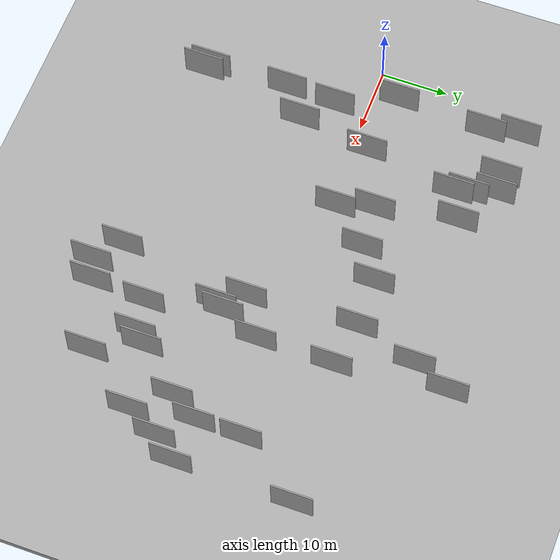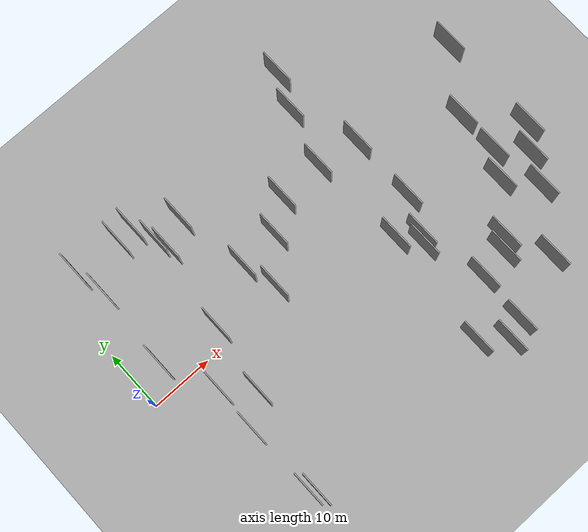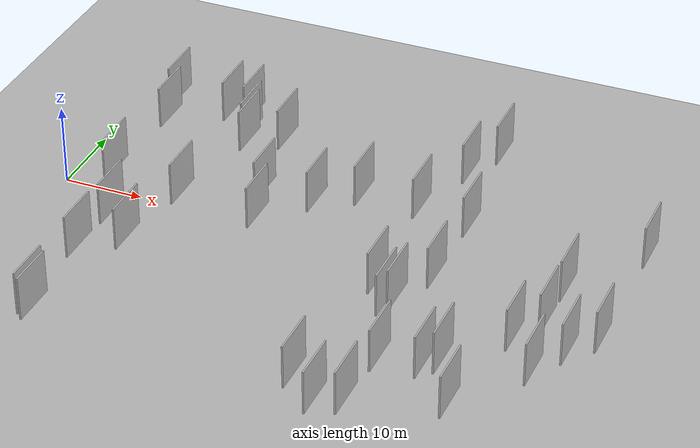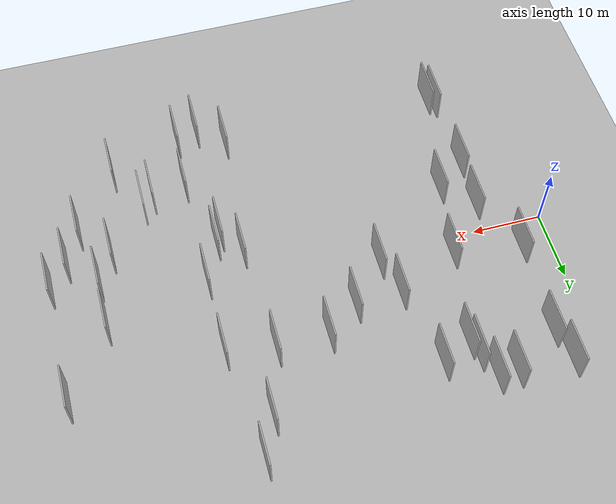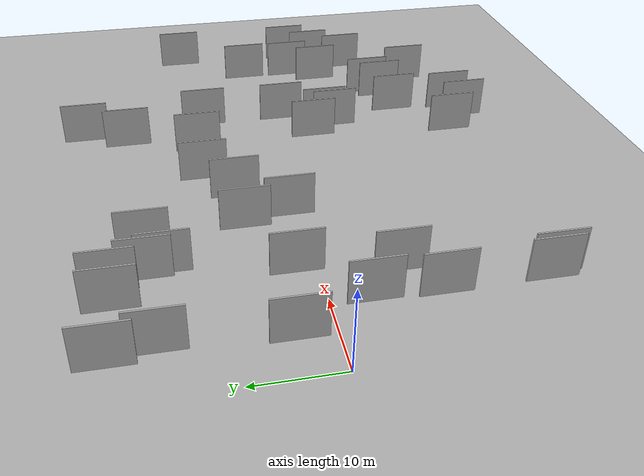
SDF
<?xml version="1.0" encoding="utf-8"?>

<sdf version="1.6">

   <world name="default">

      <gui fullscreen="0">

         <camera name="user_camera">

            <pose>-15 0 4.57585 0 0 0</pose>

            <view_controller>orbit</view_controller>

         </camera>

      </gui>

      <scene>

         <sky>

           <clouds>

             <speed>12</speed>

           </clouds>

         </sky>

         <ambient>0.4 0.4 0.4 1</ambient>

         <background>0.7 0.7 0.7 1</background>

         <shadows>1</shadows>

      </scene>

      <gravity>0 0 -9.8066</gravity>

      <magnetic_field>6e-06 2.3e-05 -4.2e-05</magnetic_field>

      <physics default="0" name="default_physics" type="ode">

         <ode>

            <solver>

               <type>quick</type>

               <iters>10</iters>

               <sor>1.0</sor>

               <use_dynamic_moi_rescaling>0</use_dynamic_moi_rescaling>

            </solver>

            <constraints>

               <cfm>0</cfm>

               <erp>0.2</erp>

               <contact_max_correcting_vel>100</contact_max_correcting_vel>

               <contact_surface_layer>0.001</contact_surface_layer>

            </constraints>

         </ode>

         <max_step_size>0.004</max_step_size>

         <real_time_factor>1</real_time_factor>

         <real_time_update_rate>250</real_time_update_rate>

      </physics>

      <light name="sun" type="directional">

         <cast_shadows>1</cast_shadows>

         <pose>0 0 10 0 0 0</pose>

         <diffuse>0.8 0.8 0.8 1</diffuse>

         <specular>0.2 0.2 0.2 1</specular>

         <attenuation>

            <range>1000</range>

            <constant>0.9</constant>

            <linear>0.01</linear>

            <quadratic>0.001</quadratic>

         </attenuation>

         <direction>-0.5 0.1 -0.9</direction>

      </light>

      <include>

         <name>ground_plane_1</name>

         <uri>model://HANNAS_ground_plane</uri>

         <pose>0 0 0  0 0 0</pose>

      </include>

      <include>

         <name>ground_plane_2</name>

         <uri>model://HANNAS_ground_plane</uri>

         <pose>100 0 0  0 0 0</pose>

      </include>

      <model name="HANNAS_wall_1">

         <static>1</static>

         <pose frame="">48.4685 -18.3845 0.0 0.000000 0.000000 1.570796</pose>

         <link name="link">

            <pose frame="">0 0 3.00 0 0 0</pose>

            <collision name="collision">

               <geometry>

                  <box>

                     <size>6.00 0.2 6.00</size>

                  </box>

               </geometry>

               <max_contacts>10</max_contacts>

               <surface>

                  <contact>

                     <ode/>

                  </contact>

                  <bounce/>

                  <friction>

                     <torsional>

                        <ode/>

                     </torsional>

                     <ode/>

                  </friction>

               </surface>

            </collision>

            <visual name="visual">

               <cast_shadows>0</cast_shadows>

               <geometry>

                  <box>

                     <size>6.00 0.2 6.00</size>

                  </box>

               </geometry>

               <material>

                  <script>

                     <uri>model://HANNAS_wall/materials/scripts</uri>

                     <uri>model://HANNAS_wall/materials/textures</uri>

                     <name>vrc/HANNAS_wall</name>

                  </script>

               </material>

            </visual>

            <self_collide>0</self_collide>

            <enable_wind>0</enable_wind>

            <kinematic>0</kinematic>

         </link>

      </model>

      <model name="HANNAS_wall_2">

         <static>1</static>

         <pose frame="">14.8363 22.1679 0.0 0.000000 0.000000 1.570796</pose>

         <link name="link">

            <pose frame="">0 0 3.00 0 0 0</pose>

            <collision name="collision">

               <geometry>

                  <box>

                     <size>6.00 0.2 6.00</size>

                  </box>

               </geometry>

               <max_contacts>10</max_contacts>

               <surface>

                  <contact>

                     <ode/>

                  </contact>

                  <bounce/>

                  <friction>

                     <torsional>

                        <ode/>

                     </torsional>

                     <ode/>

                  </friction>

               </surface>

            </collision>

            <visual name="visual">

               <cast_shadows>0</cast_shadows>

               <geometry>

                  <box>

                     <size>6.00 0.2 6.00</size>

                  </box>

               </geometry>

               <material>

                  <script>

                     <uri>model://HANNAS_wall/materials/scripts</uri>

                     <uri>model://HANNAS_wall/materials/textures</uri>

                     <name>vrc/HANNAS_wall</name>

                  </script>

               </material>

            </visual>

            <self_collide>0</self_collide>

            <enable_wind>0</enable_wind>

            <kinematic>0</kinematic>

         </link>

      </model>

      <model name="HANNAS_wall_3">

         <static>1</static>

         <pose frame="">8.4255 -23.9768 0.0 0.000000 0.000000 1.570796</pose>

         <link name="link">

            <pose frame="">0 0 3.00 0 0 0</pose>

            <collision name="collision">

               <geometry>

                  <box>

                     <size>6.00 0.2 6.00</size>

                  </box>

               </geometry>

               <max_contacts>10</max_contacts>

               <surface>

                  <contact>

                     <ode/>

                  </contact>

                  <bounce/>

                  <friction>

                     <torsional>

                        <ode/>

                     </torsional>

                     <ode/>

                  </friction>

               </surface>

            </collision>

            <visual name="visual">

               <cast_shadows>0</cast_shadows>

               <geometry>

                  <box>

                     <size>6.00 0.2 6.00</size>

                  </box>

               </geometry>

               <material>

                  <script>

                     <uri>model://HANNAS_wall/materials/scripts</uri>

                     <uri>model://HANNAS_wall/materials/textures</uri>

                     <name>vrc/HANNAS_wall</name>

                  </script>

               </material>

            </visual>

            <self_collide>0</self_collide>

            <enable_wind>0</enable_wind>

            <kinematic>0</kinematic>

         </link>

      </model>

      <model name="HANNAS_wall_4">

         <static>1</static>

         <pose frame="">4.5702 4.0605 0.0 0.000000 0.000000 1.570796</pose>

         <link name="link">

            <pose frame="">0 0 3.00 0 0 0</pose>

            <collision name="collision">

               <geometry>

                  <box>

                     <size>6.00 0.2 6.00</size>

                  </box>

               </geometry>

               <max_contacts>10</max_contacts>

               <surface>

                  <contact>

                     <ode/>

                  </contact>

                  <bounce/>

                  <friction>

                     <torsional>

                        <ode/>

                     </torsional>

                     <ode/>

                  </friction>

               </surface>

            </collision>

            <visual name="visual">

               <cast_shadows>0</cast_shadows>

               <geometry>

                  <box>

                     <size>6.00 0.2 6.00</size>

                  </box>

               </geometry>

               <material>

                  <script>

                     <uri>model://HANNAS_wall/materials/scripts</uri>

                     <uri>model://HANNAS_wall/materials/textures</uri>

                     <name>vrc/HANNAS_wall</name>

                  </script>

               </material>

            </visual>

            <self_collide>0</self_collide>

            <enable_wind>0</enable_wind>

            <kinematic>0</kinematic>

         </link>

      </model>

      <model name="HANNAS_wall_5">

         <static>1</static>

         <pose frame="">24.8012 1.3951 0.0 0.000000 0.000000 1.570796</pose>

         <link name="link">

            <pose frame="">0 0 3.00 0 0 0</pose>

            <collision name="collision">

               <geometry>

                  <box>

                     <size>6.00 0.2 6.00</size>

                  </box>

               </geometry>

               <max_contacts>10</max_contacts>

               <surface>

                  <contact>

                     <ode/>

                  </contact>

                  <bounce/>

                  <friction>

                     <torsional>

                        <ode/>

                     </torsional>

                     <ode/>

                  </friction>

               </surface>

            </collision>

            <visual name="visual">

               <cast_shadows>0</cast_shadows>

               <geometry>

                  <box>

                     <size>6.00 0.2 6.00</size>

                  </box>

               </geometry>

               <material>

                  <script>

                     <uri>model://HANNAS_wall/materials/scripts</uri>

                     <uri>model://HANNAS_wall/materials/textures</uri>

                     <name>vrc/HANNAS_wall</name>

                  </script>

               </material>

            </visual>

            <self_collide>0</self_collide>

            <enable_wind>0</enable_wind>

            <kinematic>0</kinematic>

         </link>

      </model>

      <model name="HANNAS_wall_6">

         <static>1</static>

         <pose frame="">29.9278 7.2369 0.0 0.000000 0.000000 1.570796</pose>

         <link name="link">

            <pose frame="">0 0 3.00 0 0 0</pose>

            <collision name="collision">

               <geometry>

                  <box>

                     <size>6.00 0.2 6.00</size>

                  </box>

               </geometry>

               <max_contacts>10</max_contacts>

               <surface>

                  <contact>

                     <ode/>

                  </contact>

                  <bounce/>

                  <friction>

                     <torsional>

                        <ode/>

                     </torsional>

                     <ode/>

                  </friction>

               </surface>

            </collision>

            <visual name="visual">

               <cast_shadows>0</cast_shadows>

               <geometry>

                  <box>

                     <size>6.00 0.2 6.00</size>

                  </box>

               </geometry>

               <material>

                  <script>

                     <uri>model://HANNAS_wall/materials/scripts</uri>

                     <uri>model://HANNAS_wall/materials/textures</uri>

                     <name>vrc/HANNAS_wall</name>

                  </script>

               </material>

            </visual>

            <self_collide>0</self_collide>

            <enable_wind>0</enable_wind>

            <kinematic>0</kinematic>

         </link>

      </model>

      <model name="HANNAS_wall_7">

         <static>1</static>

         <pose frame="">45.3188 -8.8101 0.0 0.000000 0.000000 1.570796</pose>

         <link name="link">

            <pose frame="">0 0 3.00 0 0 0</pose>

            <collision name="collision">

               <geometry>

                  <box>

                     <size>6.00 0.2 6.00</size>

                  </box>

               </geometry>

               <max_contacts>10</max_contacts>

               <surface>

                  <contact>

                     <ode/>

                  </contact>

                  <bounce/>

                  <friction>

                     <torsional>

                        <ode/>

                     </torsional>

                     <ode/>

                  </friction>

               </surface>

            </collision>

            <visual name="visual">

               <cast_shadows>0</cast_shadows>

               <geometry>

                  <box>

                     <size>6.00 0.2 6.00</size>

                  </box>

               </geometry>

               <material>

                  <script>

                     <uri>model://HANNAS_wall/materials/scripts</uri>

                     <uri>model://HANNAS_wall/materials/textures</uri>

                     <name>vrc/HANNAS_wall</name>

                  </script>

               </material>

            </visual>

            <self_collide>0</self_collide>

            <enable_wind>0</enable_wind>

            <kinematic>0</kinematic>

         </link>

      </model>

      <model name="HANNAS_wall_8">

         <static>1</static>

         <pose frame="">67.0962 -9.3327 0.0 0.000000 0.000000 1.570796</pose>

         <link name="link">

            <pose frame="">0 0 3.00 0 0 0</pose>

            <collision name="collision">

               <geometry>

                  <box>

                     <size>6.00 0.2 6.00</size>

                  </box>

               </geometry>

               <max_contacts>10</max_contacts>

               <surface>

                  <contact>

                     <ode/>

                  </contact>

                  <bounce/>

                  <friction>

                     <torsional>

                        <ode/>

                     </torsional>

                     <ode/>

                  </friction>

               </surface>

            </collision>

            <visual name="visual">

               <cast_shadows>0</cast_shadows>

               <geometry>

                  <box>

                     <size>6.00 0.2 6.00</size>

                  </box>

               </geometry>

               <material>

                  <script>

                     <uri>model://HANNAS_wall/materials/scripts</uri>

                     <uri>model://HANNAS_wall/materials/textures</uri>

                     <name>vrc/HANNAS_wall</name>

                  </script>

               </material>

            </visual>

            <self_collide>0</self_collide>

            <enable_wind>0</enable_wind>

            <kinematic>0</kinematic>

         </link>

      </model>

      <model name="HANNAS_wall_9">

         <static>1</static>

         <pose frame="">47.9598 -26.5343 0.0 0.000000 0.000000 1.570796</pose>

         <link name="link">

            <pose frame="">0 0 3.00 0 0 0</pose>

            <collision name="collision">

               <geometry>

                  <box>

                     <size>6.00 0.2 6.00</size>

                  </box>

               </geometry>

               <max_contacts>10</max_contacts>

               <surface>

                  <contact>

                     <ode/>

                  </contact>

                  <bounce/>

                  <friction>

                     <torsional>

                        <ode/>

                     </torsional>

                     <ode/>

                  </friction>

               </surface>

            </collision>

            <visual name="visual">

               <cast_shadows>0</cast_shadows>

               <geometry>

                  <box>

                     <size>6.00 0.2 6.00</size>

                  </box>

               </geometry>

               <material>

                  <script>

                     <uri>model://HANNAS_wall/materials/scripts</uri>

                     <uri>model://HANNAS_wall/materials/textures</uri>

                     <name>vrc/HANNAS_wall</name>

                  </script>

               </material>

            </visual>

            <self_collide>0</self_collide>

            <enable_wind>0</enable_wind>

            <kinematic>0</kinematic>

         </link>

      </model>

      <model name="HANNAS_wall_10">

         <static>1</static>

         <pose frame="">60.7388 -9.2303 0.0 0.000000 0.000000 1.570796</pose>

         <link name="link">

            <pose frame="">0 0 3.00 0 0 0</pose>

            <collision name="collision">

               <geometry>

                  <box>

                     <size>6.00 0.2 6.00</size>

                  </box>

               </geometry>

               <max_contacts>10</max_contacts>

               <surface>

                  <contact>

                     <ode/>

                  </contact>

                  <bounce/>

                  <friction>

                     <torsional>

                        <ode/>

                     </torsional>

                     <ode/>

                  </friction>

               </surface>

            </collision>

            <visual name="visual">

               <cast_shadows>0</cast_shadows>

               <geometry>

                  <box>

                     <size>6.00 0.2 6.00</size>

                  </box>

               </geometry>

               <material>

                  <script>

                     <uri>model://HANNAS_wall/materials/scripts</uri>

                     <uri>model://HANNAS_wall/materials/textures</uri>

                     <name>vrc/HANNAS_wall</name>

                  </script>

               </material>

            </visual>

            <self_collide>0</self_collide>

            <enable_wind>0</enable_wind>

            <kinematic>0</kinematic>

         </link>

      </model>

      <model name="HANNAS_wall_11">

         <static>1</static>

         <pose frame="">64.6446 -14.2195 0.0 0.000000 0.000000 1.570796</pose>

         <link name="link">

            <pose frame="">0 0 3.00 0 0 0</pose>

            <collision name="collision">

               <geometry>

                  <box>

                     <size>6.00 0.2 6.00</size>

                  </box>

               </geometry>

               <max_contacts>10</max_contacts>

               <surface>

                  <contact>

                     <ode/>

                  </contact>

                  <bounce/>

                  <friction>

                     <torsional>

                        <ode/>

                     </torsional>

                     <ode/>

                  </friction>

               </surface>

            </collision>

            <visual name="visual">

               <cast_shadows>0</cast_shadows>

               <geometry>

                  <box>

                     <size>6.00 0.2 6.00</size>

                  </box>

               </geometry>

               <material>

                  <script>

                     <uri>model://HANNAS_wall/materials/scripts</uri>

                     <uri>model://HANNAS_wall/materials/textures</uri>

                     <name>vrc/HANNAS_wall</name>

                  </script>

               </material>

            </visual>

            <self_collide>0</self_collide>

            <enable_wind>0</enable_wind>

            <kinematic>0</kinematic>

         </link>

      </model>

      <model name="HANNAS_wall_12">

         <static>1</static>

         <pose frame="">8.2031 -12.1271 0.0 0.000000 0.000000 1.570796</pose>

         <link name="link">

            <pose frame="">0 0 3.00 0 0 0</pose>

            <collision name="collision">

               <geometry>

                  <box>

                     <size>6.00 0.2 6.00</size>

                  </box>

               </geometry>

               <max_contacts>10</max_contacts>

               <surface>

                  <contact>

                     <ode/>

                  </contact>

                  <bounce/>

                  <friction>

                     <torsional>

                        <ode/>

                     </torsional>

                     <ode/>

                  </friction>

               </surface>

            </collision>

            <visual name="visual">

               <cast_shadows>0</cast_shadows>

               <geometry>

                  <box>

                     <size>6.00 0.2 6.00</size>

                  </box>

               </geometry>

               <material>

                  <script>

                     <uri>model://HANNAS_wall/materials/scripts</uri>

                     <uri>model://HANNAS_wall/materials/textures</uri>

                     <name>vrc/HANNAS_wall</name>

                  </script>

               </material>

            </visual>

            <self_collide>0</self_collide>

            <enable_wind>0</enable_wind>

            <kinematic>0</kinematic>

         </link>

      </model>

      <model name="HANNAS_wall_13">

         <static>1</static>

         <pose frame="">23.2971 6.8408 0.0 0.000000 0.000000 1.570796</pose>

         <link name="link">

            <pose frame="">0 0 3.00 0 0 0</pose>

            <collision name="collision">

               <geometry>

                  <box>

                     <size>6.00 0.2 6.00</size>

                  </box>

               </geometry>

               <max_contacts>10</max_contacts>

               <surface>

                  <contact>

                     <ode/>

                  </contact>

                  <bounce/>

                  <friction>

                     <torsional>

                        <ode/>

                     </torsional>

                     <ode/>

                  </friction>

               </surface>

            </collision>

            <visual name="visual">

               <cast_shadows>0</cast_shadows>

               <geometry>

                  <box>

                     <size>6.00 0.2 6.00</size>

                  </box>

               </geometry>

               <material>

                  <script>

                     <uri>model://HANNAS_wall/materials/scripts</uri>

                     <uri>model://HANNAS_wall/materials/textures</uri>

                     <name>vrc/HANNAS_wall</name>

                  </script>

               </material>

            </visual>

            <self_collide>0</self_collide>

            <enable_wind>0</enable_wind>

            <kinematic>0</kinematic>

         </link>

      </model>

      <model name="HANNAS_wall_14">

         <static>1</static>

         <pose frame="">41.9795 10.7698 0.0 0.000000 0.000000 1.570796</pose>

         <link name="link">

            <pose frame="">0 0 3.00 0 0 0</pose>

            <collision name="collision">

               <geometry>

                  <box>

                     <size>6.00 0.2 6.00</size>

                  </box>

               </geometry>

               <max_contacts>10</max_contacts>

               <surface>

                  <contact>

                     <ode/>

                  </contact>

                  <bounce/>

                  <friction>

                     <torsional>

                        <ode/>

                     </torsional>

                     <ode/>

                  </friction>

               </surface>

            </collision>

            <visual name="visual">

               <cast_shadows>0</cast_shadows>

               <geometry>

                  <box>

                     <size>6.00 0.2 6.00</size>

                  </box>

               </geometry>

               <material>

                  <script>

                     <uri>model://HANNAS_wall/materials/scripts</uri>

                     <uri>model://HANNAS_wall/materials/textures</uri>

                     <name>vrc/HANNAS_wall</name>

                  </script>

               </material>

            </visual>

            <self_collide>0</self_collide>

            <enable_wind>0</enable_wind>

            <kinematic>0</kinematic>

         </link>

      </model>

      <model name="HANNAS_wall_15">

         <static>1</static>

         <pose frame="">12.6186 -8.5117 0.0 0.000000 0.000000 1.570796</pose>

         <link name="link">

            <pose frame="">0 0 3.00 0 0 0</pose>

            <collision name="collision">

               <geometry>

                  <box>

                     <size>6.00 0.2 6.00</size>

                  </box>

               </geometry>

               <max_contacts>10</max_contacts>

               <surface>

                  <contact>

                     <ode/>

                  </contact>

                  <bounce/>

                  <friction>

                     <torsional>

                        <ode/>

                     </torsional>

                     <ode/>

                  </friction>

               </surface>

            </collision>

            <visual name="visual">

               <cast_shadows>0</cast_shadows>

               <geometry>

                  <box>

                     <size>6.00 0.2 6.00</size>

                  </box>

               </geometry>

               <material>

                  <script>

                     <uri>model://HANNAS_wall/materials/scripts</uri>

                     <uri>model://HANNAS_wall/materials/textures</uri>

                     <name>vrc/HANNAS_wall</name>

                  </script>

               </material>

            </visual>

            <self_collide>0</self_collide>

            <enable_wind>0</enable_wind>

            <kinematic>0</kinematic>

         </link>

      </model>

      <model name="HANNAS_wall_16">

         <static>1</static>

         <pose frame="">44.7673 20.1027 0.0 0.000000 0.000000 1.570796</pose>

         <link name="link">

            <pose frame="">0 0 3.00 0 0 0</pose>

            <collision name="collision">

               <geometry>

                  <box>

                     <size>6.00 0.2 6.00</size>

                  </box>

               </geometry>

               <max_contacts>10</max_contacts>

               <surface>

                  <contact>

                     <ode/>

                  </contact>

                  <bounce/>

                  <friction>

                     <torsional>

                        <ode/>

                     </torsional>

                     <ode/>

                  </friction>

               </surface>

            </collision>

            <visual name="visual">

               <cast_shadows>0</cast_shadows>

               <geometry>

                  <box>

                     <size>6.00 0.2 6.00</size>

                  </box>

               </geometry>

               <material>

                  <script>

                     <uri>model://HANNAS_wall/materials/scripts</uri>

                     <uri>model://HANNAS_wall/materials/textures</uri>

                     <name>vrc/HANNAS_wall</name>

                  </script>

               </material>

            </visual>

            <self_collide>0</self_collide>

            <enable_wind>0</enable_wind>

            <kinematic>0</kinematic>

         </link>

      </model>

      <model name="HANNAS_wall_17">

         <static>1</static>

         <pose frame="">34.5951 10.6803 0.0 0.000000 0.000000 1.570796</pose>

         <link name="link">

            <pose frame="">0 0 3.00 0 0 0</pose>

            <collision name="collision">

               <geometry>

                  <box>

                     <size>6.00 0.2 6.00</size>

                  </box>

               </geometry>

               <max_contacts>10</max_contacts>

               <surface>

                  <contact>

                     <ode/>

                  </contact>

                  <bounce/>

                  <friction>

                     <torsional>

                        <ode/>

                     </torsional>

                     <ode/>

                  </friction>

               </surface>

            </collision>

            <visual name="visual">

               <cast_shadows>0</cast_shadows>

               <geometry>

                  <box>

                     <size>6.00 0.2 6.00</size>

                  </box>

               </geometry>

               <material>

                  <script>

                     <uri>model://HANNAS_wall/materials/scripts</uri>

                     <uri>model://HANNAS_wall/materials/textures</uri>

                     <name>vrc/HANNAS_wall</name>

                  </script>

               </material>

            </visual>

            <self_collide>0</self_collide>

            <enable_wind>0</enable_wind>

            <kinematic>0</kinematic>

         </link>

      </model>

      <model name="HANNAS_wall_18">

         <static>1</static>

         <pose frame="">9.2818 -24.7745 0.0 0.000000 0.000000 1.570796</pose>

         <link name="link">

            <pose frame="">0 0 3.00 0 0 0</pose>

            <collision name="collision">

               <geometry>

                  <box>

                     <size>6.00 0.2 6.00</size>

                  </box>

               </geometry>

               <max_contacts>10</max_contacts>

               <surface>

                  <contact>

                     <ode/>

                  </contact>

                  <bounce/>

                  <friction>

                     <torsional>

                        <ode/>

                     </torsional>

                     <ode/>

                  </friction>

               </surface>

            </collision>

            <visual name="visual">

               <cast_shadows>0</cast_shadows>

               <geometry>

                  <box>

                     <size>6.00 0.2 6.00</size>

                  </box>

               </geometry>

               <material>

                  <script>

                     <uri>model://HANNAS_wall/materials/scripts</uri>

                     <uri>model://HANNAS_wall/materials/textures</uri>

                     <name>vrc/HANNAS_wall</name>

                  </script>

               </material>

            </visual>

            <self_collide>0</self_collide>

            <enable_wind>0</enable_wind>

            <kinematic>0</kinematic>

         </link>

      </model>

      <model name="HANNAS_wall_19">

         <static>1</static>

         <pose frame="">58.2885 -22.9157 0.0 0.000000 0.000000 1.570796</pose>

         <link name="link">

            <pose frame="">0 0 3.00 0 0 0</pose>

            <collision name="collision">

               <geometry>

                  <box>

                     <size>6.00 0.2 6.00</size>

                  </box>

               </geometry>

               <max_contacts>10</max_contacts>

               <surface>

                  <contact>

                     <ode/>

                  </contact>

                  <bounce/>

                  <friction>

                     <torsional>

                        <ode/>

                     </torsional>

                     <ode/>

                  </friction>

               </surface>

            </collision>

            <visual name="visual">

               <cast_shadows>0</cast_shadows>

               <geometry>

                  <box>

                     <size>6.00 0.2 6.00</size>

                  </box>

               </geometry>

               <material>

                  <script>

                     <uri>model://HANNAS_wall/materials/scripts</uri>

                     <uri>model://HANNAS_wall/materials/textures</uri>

                     <name>vrc/HANNAS_wall</name>

                  </script>

               </material>

            </visual>

            <self_collide>0</self_collide>

            <enable_wind>0</enable_wind>

            <kinematic>0</kinematic>

         </link>

      </model>

      <model name="HANNAS_wall_20">

         <static>1</static>

         <pose frame="">16.8274 16.4214 0.0 0.000000 0.000000 1.570796</pose>

         <link name="link">

            <pose frame="">0 0 3.00 0 0 0</pose>

            <collision name="collision">

               <geometry>

                  <box>

                     <size>6.00 0.2 6.00</size>

                  </box>

               </geometry>

               <max_contacts>10</max_contacts>

               <surface>

                  <contact>

                     <ode/>

                  </contact>

                  <bounce/>

                  <friction>

                     <torsional>

                        <ode/>

                     </torsional>

                     <ode/>

                  </friction>

               </surface>

            </collision>

            <visual name="visual">

               <cast_shadows>0</cast_shadows>

               <geometry>

                  <box>

                     <size>6.00 0.2 6.00</size>

                  </box>

               </geometry>

               <material>

                  <script>

                     <uri>model://HANNAS_wall/materials/scripts</uri>

                     <uri>model://HANNAS_wall/materials/textures</uri>

                     <name>vrc/HANNAS_wall</name>

                  </script>

               </material>

            </visual>

            <self_collide>0</self_collide>

            <enable_wind>0</enable_wind>

            <kinematic>0</kinematic>

         </link>

      </model>

      <model name="HANNAS_wall_21">

         <static>1</static>

         <pose frame="">48.6760 -1.6805 0.0 0.000000 0.000000 1.570796</pose>

         <link name="link">

            <pose frame="">0 0 3.00 0 0 0</pose>

            <collision name="collision">

               <geometry>

                  <box>

                     <size>6.00 0.2 6.00</size>

                  </box>

               </geometry>

               <max_contacts>10</max_contacts>

               <surface>

                  <contact>

                     <ode/>

                  </contact>

                  <bounce/>

                  <friction>

                     <torsional>

                        <ode/>

                     </torsional>

                     <ode/>

                  </friction>

               </surface>

            </collision>

            <visual name="visual">

               <cast_shadows>0</cast_shadows>

               <geometry>

                  <box>

                     <size>6.00 0.2 6.00</size>

                  </box>

               </geometry>

               <material>

                  <script>

                     <uri>model://HANNAS_wall/materials/scripts</uri>

                     <uri>model://HANNAS_wall/materials/textures</uri>

                     <name>vrc/HANNAS_wall</name>

                  </script>

               </material>

            </visual>

            <self_collide>0</self_collide>

            <enable_wind>0</enable_wind>

            <kinematic>0</kinematic>

         </link>

      </model>

      <model name="HANNAS_wall_22">

         <static>1</static>

         <pose frame="">63.1505 -5.1223 0.0 0.000000 0.000000 1.570796</pose>

         <link name="link">

            <pose frame="">0 0 3.00 0 0 0</pose>

            <collision name="collision">

               <geometry>

                  <box>

                     <size>6.00 0.2 6.00</size>

                  </box>

               </geometry>

               <max_contacts>10</max_contacts>

               <surface>

                  <contact>

                     <ode/>

                  </contact>

                  <bounce/>

                  <friction>

                     <torsional>

                        <ode/>

                     </torsional>

                     <ode/>

                  </friction>

               </surface>

            </collision>

            <visual name="visual">

               <cast_shadows>0</cast_shadows>

               <geometry>

                  <box>

                     <size>6.00 0.2 6.00</size>

                  </box>

               </geometry>

               <material>

                  <script>

                     <uri>model://HANNAS_wall/materials/scripts</uri>

                     <uri>model://HANNAS_wall/materials/textures</uri>

                     <name>vrc/HANNAS_wall</name>

                  </script>

               </material>

            </visual>

            <self_collide>0</self_collide>

            <enable_wind>0</enable_wind>

            <kinematic>0</kinematic>

         </link>

      </model>

      <model name="HANNAS_wall_23">

         <static>1</static>

         <pose frame="">47.1227 25.6715 0.0 0.000000 0.000000 1.570796</pose>

         <link name="link">

            <pose frame="">0 0 3.00 0 0 0</pose>

            <collision name="collision">

               <geometry>

                  <box>

                     <size>6.00 0.2 6.00</size>

                  </box>

               </geometry>

               <max_contacts>10</max_contacts>

               <surface>

                  <contact>

                     <ode/>

                  </contact>

                  <bounce/>

                  <friction>

                     <torsional>

                        <ode/>

                     </torsional>

                     <ode/>

                  </friction>

               </surface>

            </collision>

            <visual name="visual">

               <cast_shadows>0</cast_shadows>

               <geometry>

                  <box>

                     <size>6.00 0.2 6.00</size>

                  </box>

               </geometry>

               <material>

                  <script>

                     <uri>model://HANNAS_wall/materials/scripts</uri>

                     <uri>model://HANNAS_wall/materials/textures</uri>

                     <name>vrc/HANNAS_wall</name>

                  </script>

               </material>

            </visual>

            <self_collide>0</self_collide>

            <enable_wind>0</enable_wind>

            <kinematic>0</kinematic>

         </link>

      </model>

      <model name="HANNAS_wall_24">

         <static>1</static>

         <pose frame="">53.3775 -17.6047 0.0 0.000000 0.000000 1.570796</pose>

         <link name="link">

            <pose frame="">0 0 3.00 0 0 0</pose>

            <collision name="collision">

               <geometry>

                  <box>

                     <size>6.00 0.2 6.00</size>

                  </box>

               </geometry>

               <max_contacts>10</max_contacts>

               <surface>

                  <contact>

                     <ode/>

                  </contact>

                  <bounce/>

                  <friction>

                     <torsional>

                        <ode/>

                     </torsional>

                     <ode/>

                  </friction>

               </surface>

            </collision>

            <visual name="visual">

               <cast_shadows>0</cast_shadows>

               <geometry>

                  <box>

                     <size>6.00 0.2 6.00</size>

                  </box>

               </geometry>

               <material>

                  <script>

                     <uri>model://HANNAS_wall/materials/scripts</uri>

                     <uri>model://HANNAS_wall/materials/textures</uri>

                     <name>vrc/HANNAS_wall</name>

                  </script>

               </material>

            </visual>

            <self_collide>0</self_collide>

            <enable_wind>0</enable_wind>

            <kinematic>0</kinematic>

         </link>

      </model>

      <model name="HANNAS_wall_25">

         <static>1</static>

         <pose frame="">41.0815 -24.5777 0.0 0.000000 0.000000 1.570796</pose>

         <link name="link">

            <pose frame="">0 0 3.00 0 0 0</pose>

            <collision name="collision">

               <geometry>

                  <box>

                     <size>6.00 0.2 6.00</size>

                  </box>

               </geometry>

               <max_contacts>10</max_contacts>

               <surface>

                  <contact>

                     <ode/>

                  </contact>

                  <bounce/>

                  <friction>

                     <torsional>

                        <ode/>

                     </torsional>

                     <ode/>

                  </friction>

               </surface>

            </collision>

            <visual name="visual">

               <cast_shadows>0</cast_shadows>

               <geometry>

                  <box>

                     <size>6.00 0.2 6.00</size>

                  </box>

               </geometry>

               <material>

                  <script>

                     <uri>model://HANNAS_wall/materials/scripts</uri>

                     <uri>model://HANNAS_wall/materials/textures</uri>

                     <name>vrc/HANNAS_wall</name>

                  </script>

               </material>

            </visual>

            <self_collide>0</self_collide>

            <enable_wind>0</enable_wind>

            <kinematic>0</kinematic>

         </link>

      </model>

      <model name="HANNAS_wall_26">

         <static>1</static>

         <pose frame="">48.7799 9.4487 0.0 0.000000 0.000000 1.570796</pose>

         <link name="link">

            <pose frame="">0 0 3.00 0 0 0</pose>

            <collision name="collision">

               <geometry>

                  <box>

                     <size>6.00 0.2 6.00</size>

                  </box>

               </geometry>

               <max_contacts>10</max_contacts>

               <surface>

                  <contact>

                     <ode/>

                  </contact>

                  <bounce/>

                  <friction>

                     <torsional>

                        <ode/>

                     </torsional>

                     <ode/>

                  </friction>

               </surface>

            </collision>

            <visual name="visual">

               <cast_shadows>0</cast_shadows>

               <geometry>

                  <box>

                     <size>6.00 0.2 6.00</size>

                  </box>

               </geometry>

               <material>

                  <script>

                     <uri>model://HANNAS_wall/materials/scripts</uri>

                     <uri>model://HANNAS_wall/materials/textures</uri>

                     <name>vrc/HANNAS_wall</name>

                  </script>

               </material>

            </visual>

            <self_collide>0</self_collide>

            <enable_wind>0</enable_wind>

            <kinematic>0</kinematic>

         </link>

      </model>

      <model name="HANNAS_wall_27">

         <static>1</static>

         <pose frame="">11.9914 22.0134 0.0 0.000000 0.000000 1.570796</pose>

         <link name="link">

            <pose frame="">0 0 3.00 0 0 0</pose>

            <collision name="collision">

               <geometry>

                  <box>

                     <size>6.00 0.2 6.00</size>

                  </box>

               </geometry>

               <max_contacts>10</max_contacts>

               <surface>

                  <contact>

                     <ode/>

                  </contact>

                  <bounce/>

                  <friction>

                     <torsional>

                        <ode/>

                     </torsional>

                     <ode/>

                  </friction>

               </surface>

            </collision>

            <visual name="visual">

               <cast_shadows>0</cast_shadows>

               <geometry>

                  <box>

                     <size>6.00 0.2 6.00</size>

                  </box>

               </geometry>

               <material>

                  <script>

                     <uri>model://HANNAS_wall/materials/scripts</uri>

                     <uri>model://HANNAS_wall/materials/textures</uri>

                     <name>vrc/HANNAS_wall</name>

                  </script>

               </material>

            </visual>

            <self_collide>0</self_collide>

            <enable_wind>0</enable_wind>

            <kinematic>0</kinematic>

         </link>

      </model>

      <model name="HANNAS_wall_28">

         <static>1</static>

         <pose frame="">14.3675 2.4702 0.0 0.000000 0.000000 1.570796</pose>

         <link name="link">

            <pose frame="">0 0 3.00 0 0 0</pose>

            <collision name="collision">

               <geometry>

                  <box>

                     <size>6.00 0.2 6.00</size>

                  </box>

               </geometry>

               <max_contacts>10</max_contacts>

               <surface>

                  <contact>

                     <ode/>

                  </contact>

                  <bounce/>

                  <friction>

                     <torsional>

                        <ode/>

                     </torsional>

                     <ode/>

                  </friction>

               </surface>

            </collision>

            <visual name="visual">

               <cast_shadows>0</cast_shadows>

               <geometry>

                  <box>

                     <size>6.00 0.2 6.00</size>

                  </box>

               </geometry>

               <material>

                  <script>

                     <uri>model://HANNAS_wall/materials/scripts</uri>

                     <uri>model://HANNAS_wall/materials/textures</uri>

                     <name>vrc/HANNAS_wall</name>

                  </script>

               </material>

            </visual>

            <self_collide>0</self_collide>

            <enable_wind>0</enable_wind>

            <kinematic>0</kinematic>

         </link>

      </model>

      <model name="HANNAS_wall_29">

         <static>1</static>

         <pose frame="">5.3191 17.6156 0.0 0.000000 0.000000 1.570796</pose>

         <link name="link">

            <pose frame="">0 0 3.00 0 0 0</pose>

            <collision name="collision">

               <geometry>

                  <box>

                     <size>6.00 0.2 6.00</size>

                  </box>

               </geometry>

               <max_contacts>10</max_contacts>

               <surface>

                  <contact>

                     <ode/>

                  </contact>

                  <bounce/>

                  <friction>

                     <torsional>

                        <ode/>

                     </torsional>

                     <ode/>

                  </friction>

               </surface>

            </collision>

            <visual name="visual">

               <cast_shadows>0</cast_shadows>

               <geometry>

                  <box>

                     <size>6.00 0.2 6.00</size>

                  </box>

               </geometry>

               <material>

                  <script>

                     <uri>model://HANNAS_wall/materials/scripts</uri>

                     <uri>model://HANNAS_wall/materials/textures</uri>

                     <name>vrc/HANNAS_wall</name>

                  </script>

               </material>

            </visual>

            <self_collide>0</self_collide>

            <enable_wind>0</enable_wind>

            <kinematic>0</kinematic>

         </link>

      </model>

      <model name="HANNAS_wall_30">

         <static>1</static>

         <pose frame="">42.8719 -5.2752 0.0 0.000000 0.000000 1.570796</pose>

         <link name="link">

            <pose frame="">0 0 3.00 0 0 0</pose>

            <collision name="collision">

               <geometry>

                  <box>

                     <size>6.00 0.2 6.00</size>

                  </box>

               </geometry>

               <max_contacts>10</max_contacts>

               <surface>

                  <contact>

                     <ode/>

                  </contact>

                  <bounce/>

                  <friction>

                     <torsional>

                        <ode/>

                     </torsional>

                     <ode/>

                  </friction>

               </surface>

            </collision>

            <visual name="visual">

               <cast_shadows>0</cast_shadows>

               <geometry>

                  <box>

                     <size>6.00 0.2 6.00</size>

                  </box>

               </geometry>

               <material>

                  <script>

                     <uri>model://HANNAS_wall/materials/scripts</uri>

                     <uri>model://HANNAS_wall/materials/textures</uri>

                     <name>vrc/HANNAS_wall</name>

                  </script>

               </material>

            </visual>

            <self_collide>0</self_collide>

            <enable_wind>0</enable_wind>

            <kinematic>0</kinematic>

         </link>

      </model>

      <model name="HANNAS_wall_31">

         <static>1</static>

         <pose frame="">46.1504 -7.4848 0.0 0.000000 0.000000 1.570796</pose>

         <link name="link">

            <pose frame="">0 0 3.00 0 0 0</pose>

            <collision name="collision">

               <geometry>

                  <box>

                     <size>6.00 0.2 6.00</size>

                  </box>

               </geometry>

               <max_contacts>10</max_contacts>

               <surface>

                  <contact>

                     <ode/>

                  </contact>

                  <bounce/>

                  <friction>

                     <torsional>

                        <ode/>

                     </torsional>

                     <ode/>

                  </friction>

               </surface>

            </collision>

            <visual name="visual">

               <cast_shadows>0</cast_shadows>

               <geometry>

                  <box>

                     <size>6.00 0.2 6.00</size>

                  </box>

               </geometry>

               <material>

                  <script>

                     <uri>model://HANNAS_wall/materials/scripts</uri>

                     <uri>model://HANNAS_wall/materials/textures</uri>

                     <name>vrc/HANNAS_wall</name>

                  </script>

               </material>

            </visual>

            <self_collide>0</self_collide>

            <enable_wind>0</enable_wind>

            <kinematic>0</kinematic>

         </link>

      </model>

      <model name="HANNAS_wall_32">

         <static>1</static>

         <pose frame="">69.9980 11.5385 0.0 0.000000 0.000000 1.570796</pose>

         <link name="link">

            <pose frame="">0 0 3.00 0 0 0</pose>

            <collision name="collision">

               <geometry>

                  <box>

                     <size>6.00 0.2 6.00</size>

                  </box>

               </geometry>

               <max_contacts>10</max_contacts>

               <surface>

                  <contact>

                     <ode/>

                  </contact>

                  <bounce/>

                  <friction>

                     <torsional>

                        <ode/>

                     </torsional>

                     <ode/>

                  </friction>

               </surface>

            </collision>

            <visual name="visual">

               <cast_shadows>0</cast_shadows>

               <geometry>

                  <box>

                     <size>6.00 0.2 6.00</size>

                  </box>

               </geometry>

               <material>

                  <script>

                     <uri>model://HANNAS_wall/materials/scripts</uri>

                     <uri>model://HANNAS_wall/materials/textures</uri>

                     <name>vrc/HANNAS_wall</name>

                  </script>

               </material>

            </visual>

            <self_collide>0</self_collide>

            <enable_wind>0</enable_wind>

            <kinematic>0</kinematic>

         </link>

      </model>

      <model name="HANNAS_wall_33">

         <static>1</static>

         <pose frame="">16.1857 18.4561 0.0 0.000000 0.000000 1.570796</pose>

         <link name="link">

            <pose frame="">0 0 3.00 0 0 0</pose>

            <collision name="collision">

               <geometry>

                  <box>

                     <size>6.00 0.2 6.00</size>

                  </box>

               </geometry>

               <max_contacts>10</max_contacts>

               <surface>

                  <contact>

                     <ode/>

                  </contact>

                  <bounce/>

                  <friction>

                     <torsional>

                        <ode/>

                     </torsional>

                     <ode/>

                  </friction>

               </surface>

            </collision>

            <visual name="visual">

               <cast_shadows>0</cast_shadows>

               <geometry>

                  <box>

                     <size>6.00 0.2 6.00</size>

                  </box>

               </geometry>

               <material>

                  <script>

                     <uri>model://HANNAS_wall/materials/scripts</uri>

                     <uri>model://HANNAS_wall/materials/textures</uri>

                     <name>vrc/HANNAS_wall</name>

                  </script>

               </material>

            </visual>

            <self_collide>0</self_collide>

            <enable_wind>0</enable_wind>

            <kinematic>0</kinematic>

         </link>

      </model>

      <model name="HANNAS_wall_34">

         <static>1</static>

         <pose frame="">44.8659 -27.7339 0.0 0.000000 0.000000 1.570796</pose>

         <link name="link">

            <pose frame="">0 0 3.00 0 0 0</pose>

            <collision name="collision">

               <geometry>

                  <box>

                     <size>6.00 0.2 6.00</size>

                  </box>

               </geometry>

               <max_contacts>10</max_contacts>

               <surface>

                  <contact>

                     <ode/>

                  </contact>

                  <bounce/>

                  <friction>

                     <torsional>

                        <ode/>

                     </torsional>

                     <ode/>

                  </friction>

               </surface>

            </collision>

            <visual name="visual">

               <cast_shadows>0</cast_shadows>

               <geometry>

                  <box>

                     <size>6.00 0.2 6.00</size>

                  </box>

               </geometry>

               <material>

                  <script>

                     <uri>model://HANNAS_wall/materials/scripts</uri>

                     <uri>model://HANNAS_wall/materials/textures</uri>

                     <name>vrc/HANNAS_wall</name>

                  </script>

               </material>

            </visual>

            <self_collide>0</self_collide>

            <enable_wind>0</enable_wind>

            <kinematic>0</kinematic>

         </link>

      </model>

      <model name="HANNAS_wall_35">

         <static>1</static>

         <pose frame="">54.9498 -16.1058 0.0 0.000000 0.000000 1.570796</pose>

         <link name="link">

            <pose frame="">0 0 3.00 0 0 0</pose>

            <collision name="collision">

               <geometry>

                  <box>

                     <size>6.00 0.2 6.00</size>

                  </box>

               </geometry>

               <max_contacts>10</max_contacts>

               <surface>

                  <contact>

                     <ode/>

                  </contact>

                  <bounce/>

                  <friction>

                     <torsional>

                        <ode/>

                     </torsional>

                     <ode/>

                  </friction>

               </surface>

            </collision>

            <visual name="visual">

               <cast_shadows>0</cast_shadows>

               <geometry>

                  <box>

                     <size>6.00 0.2 6.00</size>

                  </box>

               </geometry>

               <material>

                  <script>

                     <uri>model://HANNAS_wall/materials/scripts</uri>

                     <uri>model://HANNAS_wall/materials/textures</uri>

                     <name>vrc/HANNAS_wall</name>

                  </script>

               </material>

            </visual>

            <self_collide>0</self_collide>

            <enable_wind>0</enable_wind>

            <kinematic>0</kinematic>

         </link>

      </model>

      <model name="HANNAS_wall_36">

         <static>1</static>

         <pose frame="">21.0833 18.5243 0.0 0.000000 0.000000 1.570796</pose>

         <link name="link">

            <pose frame="">0 0 3.00 0 0 0</pose>

            <collision name="collision">

               <geometry>

                  <box>

                     <size>6.00 0.2 6.00</size>

                  </box>

               </geometry>

               <max_contacts>10</max_contacts>

               <surface>

                  <contact>

                     <ode/>

                  </contact>

                  <bounce/>

                  <friction>

                     <torsional>

                        <ode/>

                     </torsional>

                     <ode/>

                  </friction>

               </surface>

            </collision>

            <visual name="visual">

               <cast_shadows>0</cast_shadows>

               <geometry>

                  <box>

                     <size>6.00 0.2 6.00</size>

                  </box>

               </geometry>

               <material>

                  <script>

                     <uri>model://HANNAS_wall/materials/scripts</uri>

                     <uri>model://HANNAS_wall/materials/textures</uri>

                     <name>vrc/HANNAS_wall</name>

                  </script>

               </material>

            </visual>

            <self_collide>0</self_collide>

            <enable_wind>0</enable_wind>

            <kinematic>0</kinematic>

         </link>

      </model>

      <model name="HANNAS_wall_37">

         <static>1</static>

         <pose frame="">69.8165 -5.8589 0.0 0.000000 0.000000 1.570796</pose>

         <link name="link">

            <pose frame="">0 0 3.00 0 0 0</pose>

            <collision name="collision">

               <geometry>

                  <box>

                     <size>6.00 0.2 6.00</size>

                  </box>

               </geometry>

               <max_contacts>10</max_contacts>

               <surface>

                  <contact>

                     <ode/>

                  </contact>

                  <bounce/>

                  <friction>

                     <torsional>

                        <ode/>

                     </torsional>

                     <ode/>

                  </friction>

               </surface>

            </collision>

            <visual name="visual">

               <cast_shadows>0</cast_shadows>

               <geometry>

                  <box>

                     <size>6.00 0.2 6.00</size>

                  </box>

               </geometry>

               <material>

                  <script>

                     <uri>model://HANNAS_wall/materials/scripts</uri>

                     <uri>model://HANNAS_wall/materials/textures</uri>

                     <name>vrc/HANNAS_wall</name>

                  </script>

               </material>

            </visual>

            <self_collide>0</self_collide>

            <enable_wind>0</enable_wind>

            <kinematic>0</kinematic>

         </link>

      </model>

      <model name="HANNAS_wall_38">

         <static>1</static>

         <pose frame="">63.2761 1.7272 0.0 0.000000 0.000000 1.570796</pose>

         <link name="link">

            <pose frame="">0 0 3.00 0 0 0</pose>

            <collision name="collision">

               <geometry>

                  <box>

                     <size>6.00 0.2 6.00</size>

                  </box>

               </geometry>

               <max_contacts>10</max_contacts>

               <surface>

                  <contact>

                     <ode/>

                  </contact>

                  <bounce/>

                  <friction>

                     <torsional>

                        <ode/>

                     </torsional>

                     <ode/>

                  </friction>

               </surface>

            </collision>

            <visual name="visual">

               <cast_shadows>0</cast_shadows>

               <geometry>

                  <box>

                     <size>6.00 0.2 6.00</size>

                  </box>

               </geometry>

               <material>

                  <script>

                     <uri>model://HANNAS_wall/materials/scripts</uri>

                     <uri>model://HANNAS_wall/materials/textures</uri>

                     <name>vrc/HANNAS_wall</name>

                  </script>

               </material>

            </visual>

            <self_collide>0</self_collide>

            <enable_wind>0</enable_wind>

            <kinematic>0</kinematic>

         </link>

      </model>

      <model name="HANNAS_wall_39">

         <static>1</static>

         <pose frame="">8.5108 -4.5612 0.0 0.000000 0.000000 1.570796</pose>

         <link name="link">

            <pose frame="">0 0 3.00 0 0 0</pose>

            <collision name="collision">

               <geometry>

                  <box>

                     <size>6.00 0.2 6.00</size>

                  </box>

               </geometry>

               <max_contacts>10</max_contacts>

               <surface>

                  <contact>

                     <ode/>

                  </contact>

                  <bounce/>

                  <friction>

                     <torsional>

                        <ode/>

                     </torsional>

                     <ode/>

                  </friction>

               </surface>

            </collision>

            <visual name="visual">

               <cast_shadows>0</cast_shadows>

               <geometry>

                  <box>

                     <size>6.00 0.2 6.00</size>

                  </box>

               </geometry>

               <material>

                  <script>

                     <uri>model://HANNAS_wall/materials/scripts</uri>

                     <uri>model://HANNAS_wall/materials/textures</uri>

                     <name>vrc/HANNAS_wall</name>

                  </script>

               </material>

            </visual>

            <self_collide>0</self_collide>

            <enable_wind>0</enable_wind>

            <kinematic>0</kinematic>

         </link>

      </model>

      <model name="HANNAS_wall_40">

         <static>1</static>

         <pose frame="">4.2666 22.4852 0.0 0.000000 0.000000 1.570796</pose>

         <link name="link">

            <pose frame="">0 0 3.00 0 0 0</pose>

            <collision name="collision">

               <geometry>

                  <box>

                     <size>6.00 0.2 6.00</size>

                  </box>

               </geometry>

               <max_contacts>10</max_contacts>

               <surface>

                  <contact>

                     <ode/>

                  </contact>

                  <bounce/>

                  <friction>

                     <torsional>

                        <ode/>

                     </torsional>

                     <ode/>

                  </friction>

               </surface>

            </collision>

            <visual name="visual">

               <cast_shadows>0</cast_shadows>

               <geometry>

                  <box>

                     <size>6.00 0.2 6.00</size>

                  </box>

               </geometry>

               <material>

                  <script>

                     <uri>model://HANNAS_wall/materials/scripts</uri>

                     <uri>model://HANNAS_wall/materials/textures</uri>

                     <name>vrc/HANNAS_wall</name>

                  </script>

               </material>

            </visual>

            <self_collide>0</self_collide>

            <enable_wind>0</enable_wind>

            <kinematic>0</kinematic>

         </link>

      </model>

   </world>

</sdf>
